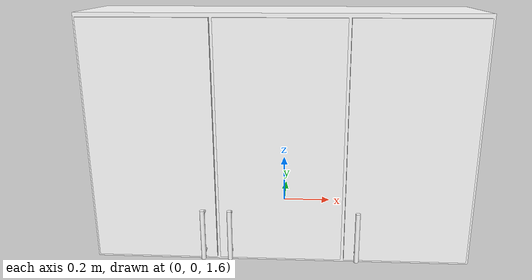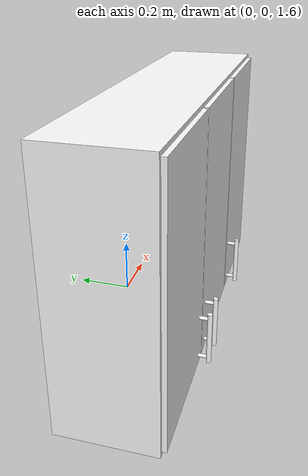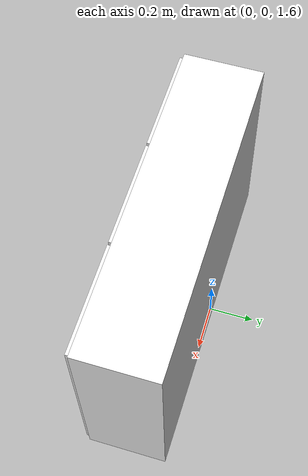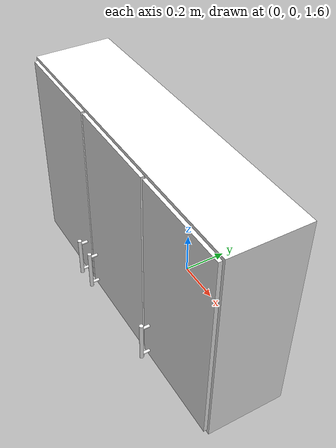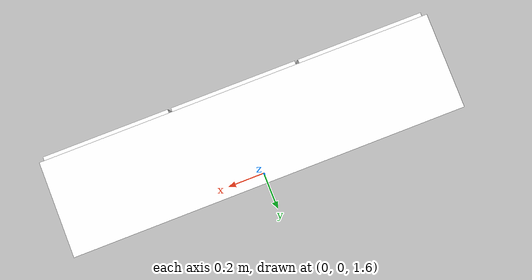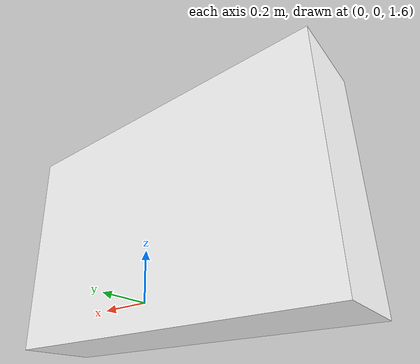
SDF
<?xml version="1.0"?>
<sdf version="1.6">
  <model name="kitchen_wall_cab_es">
    <static>true</static>
    <link name="link">
      <visual name="carcass">
        <pose>0 -0.175 1.975 0 0 0</pose>
        <geometry><box><size>1.45 0.35 0.95</size></box></geometry>
        <material><pbr><metal><albedo_map>textures/wood.png</albedo_map><metalness>0.0</metalness><roughness>0.75</roughness></metal></pbr><ambient>1 1 1 1</ambient><diffuse>1 1 1 1</diffuse><specular>0.25 0.25 0.25 1</specular><emissive>0 0 0 1</emissive></material>
      </visual>
      <visual name="door0">
        <pose>-0.47933 -0.358 1.975 0 0 0</pose>
        <geometry><box><size>0.46733 0.016 0.92</size></box></geometry>
        <material><pbr><metal><albedo_map>textures/wood.png</albedo_map><metalness>0.0</metalness><roughness>0.55</roughness></metal></pbr><ambient>1 1 1 1</ambient><diffuse>1 1 1 1</diffuse><specular>0.25 0.25 0.25 1</specular><emissive>0 0 0 1</emissive></material>
      </visual>
      <visual name="door0_handle_bar">
        <pose>-0.29067 -0.404 1.63 0 0 0</pose>
        <geometry><cylinder><radius>0.009</radius><length>0.2</length></cylinder></geometry>
        <material><pbr><metal><albedo_map>textures/stainless.png</albedo_map><metalness>0.25</metalness><roughness>0.15</roughness></metal></pbr><ambient>1 1 1 1</ambient><diffuse>1 1 1 1</diffuse><specular>1 1 1 1</specular><emissive>0 0 0 1</emissive></material>
      </visual>
      <visual name="door0_handle_post0">
        <pose>-0.29067 -0.385 1.55 1.5708 0 0</pose>
        <geometry><cylinder><radius>0.0063</radius><length>0.038</length></cylinder></geometry>
        <material><pbr><metal><albedo_map>textures/stainless.png</albedo_map><metalness>0.25</metalness><roughness>0.15</roughness></metal></pbr><ambient>1 1 1 1</ambient><diffuse>1 1 1 1</diffuse><specular>1 1 1 1</specular><emissive>0 0 0 1</emissive></material>
      </visual>
      <visual name="door0_handle_post1">
        <pose>-0.29067 -0.385 1.71 1.5708 0 0</pose>
        <geometry><cylinder><radius>0.0063</radius><length>0.038</length></cylinder></geometry>
        <material><pbr><metal><albedo_map>textures/stainless.png</albedo_map><metalness>0.25</metalness><roughness>0.15</roughness></metal></pbr><ambient>1 1 1 1</ambient><diffuse>1 1 1 1</diffuse><specular>1 1 1 1</specular><emissive>0 0 0 1</emissive></material>
      </visual>
      <visual name="door1">
        <pose>5.5511e-17 -0.358 1.975 0 0 0</pose>
        <geometry><box><size>0.46733 0.016 0.92</size></box></geometry>
        <material><pbr><metal><albedo_map>textures/wood.png</albedo_map><metalness>0.0</metalness><roughness>0.55</roughness></metal></pbr><ambient>1 1 1 1</ambient><diffuse>1 1 1 1</diffuse><specular>0.25 0.25 0.25 1</specular><emissive>0 0 0 1</emissive></material>
      </visual>
      <visual name="door1_handle_bar">
        <pose>-0.18867 -0.404 1.63 0 0 0</pose>
        <geometry><cylinder><radius>0.009</radius><length>0.2</length></cylinder></geometry>
        <material><pbr><metal><albedo_map>textures/stainless.png</albedo_map><metalness>0.25</metalness><roughness>0.15</roughness></metal></pbr><ambient>1 1 1 1</ambient><diffuse>1 1 1 1</diffuse><specular>1 1 1 1</specular><emissive>0 0 0 1</emissive></material>
      </visual>
      <visual name="door1_handle_post0">
        <pose>-0.18867 -0.385 1.55 1.5708 0 0</pose>
        <geometry><cylinder><radius>0.0063</radius><length>0.038</length></cylinder></geometry>
        <material><pbr><metal><albedo_map>textures/stainless.png</albedo_map><metalness>0.25</metalness><roughness>0.15</roughness></metal></pbr><ambient>1 1 1 1</ambient><diffuse>1 1 1 1</diffuse><specular>1 1 1 1</specular><emissive>0 0 0 1</emissive></material>
      </visual>
      <visual name="door1_handle_post1">
        <pose>-0.18867 -0.385 1.71 1.5708 0 0</pose>
        <geometry><cylinder><radius>0.0063</radius><length>0.038</length></cylinder></geometry>
        <material><pbr><metal><albedo_map>textures/stainless.png</albedo_map><metalness>0.25</metalness><roughness>0.15</roughness></metal></pbr><ambient>1 1 1 1</ambient><diffuse>1 1 1 1</diffuse><specular>1 1 1 1</specular><emissive>0 0 0 1</emissive></material>
      </visual>
      <visual name="door2">
        <pose>0.47933 -0.358 1.975 0 0 0</pose>
        <geometry><box><size>0.46733 0.016 0.92</size></box></geometry>
        <material><pbr><metal><albedo_map>textures/wood.png</albedo_map><metalness>0.0</metalness><roughness>0.55</roughness></metal></pbr><ambient>1 1 1 1</ambient><diffuse>1 1 1 1</diffuse><specular>0.25 0.25 0.25 1</specular><emissive>0 0 0 1</emissive></material>
      </visual>
      <visual name="door2_handle_bar">
        <pose>0.29067 -0.404 1.63 0 0 0</pose>
        <geometry><cylinder><radius>0.009</radius><length>0.2</length></cylinder></geometry>
        <material><pbr><metal><albedo_map>textures/stainless.png</albedo_map><metalness>0.25</metalness><roughness>0.15</roughness></metal></pbr><ambient>1 1 1 1</ambient><diffuse>1 1 1 1</diffuse><specular>1 1 1 1</specular><emissive>0 0 0 1</emissive></material>
      </visual>
      <visual name="door2_handle_post0">
        <pose>0.29067 -0.385 1.55 1.5708 0 0</pose>
        <geometry><cylinder><radius>0.0063</radius><length>0.038</length></cylinder></geometry>
        <material><pbr><metal><albedo_map>textures/stainless.png</albedo_map><metalness>0.25</metalness><roughness>0.15</roughness></metal></pbr><ambient>1 1 1 1</ambient><diffuse>1 1 1 1</diffuse><specular>1 1 1 1</specular><emissive>0 0 0 1</emissive></material>
      </visual>
      <visual name="door2_handle_post1">
        <pose>0.29067 -0.385 1.71 1.5708 0 0</pose>
        <geometry><cylinder><radius>0.0063</radius><length>0.038</length></cylinder></geometry>
        <material><pbr><metal><albedo_map>textures/stainless.png</albedo_map><metalness>0.25</metalness><roughness>0.15</roughness></metal></pbr><ambient>1 1 1 1</ambient><diffuse>1 1 1 1</diffuse><specular>1 1 1 1</specular><emissive>0 0 0 1</emissive></material>
      </visual>
      <collision name="body">
        <pose>0 -0.183 1.975 0 0 0</pose>
        <geometry><box><size>1.45 0.366 0.95</size></box></geometry>
      </collision>
    </link>
    <allow_auto_disable>1</allow_auto_disable>
  </model>
</sdf>
